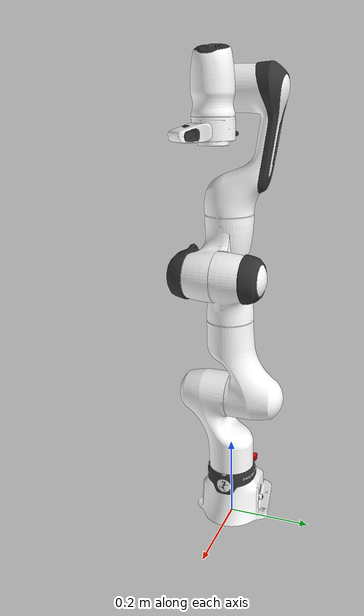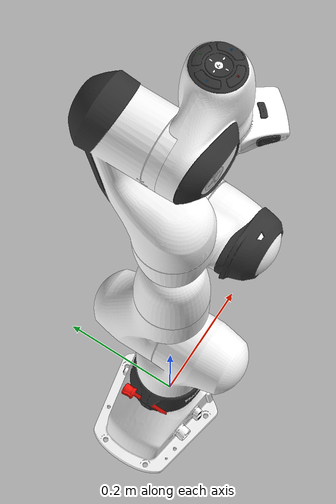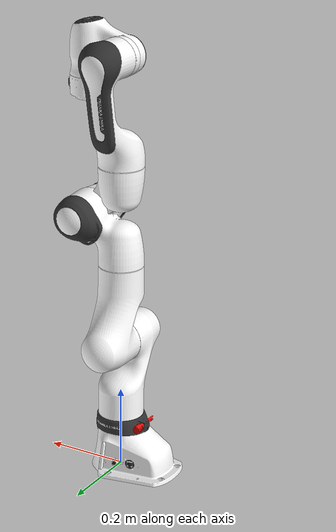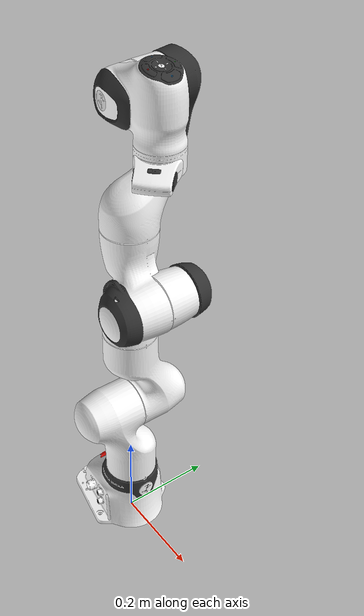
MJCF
<mujoco model="fr3">
  <compiler angle="radian"/>

  <option integrator="implicitfast"/>

  <size nkey="1"/>

  <default>
    <default class="fr3">
      <joint armature="0.195" damping="0.21" frictionloss="1.137"/>
      <site size="0.001 0.005 0.005" group="4" rgba="0.5 0.5 0.5 0.3"/>
      <general biastype="affine" biasprm="0 -1"/>
      <default class="visual">
        <geom type="mesh" contype="0" conaffinity="0" group="2"/>
      </default>
      <default class="collision">
        <geom type="mesh" group="3"/>
      </default>
    </default>
    <default class="2f85_main">
      <default class="2f85_2f85">
        <mesh scale="0.001 0.001 0.001"/>
        <general biastype="affine"/>
        <default class="2f85_driver">
          <joint solreflimit="0.005" solimplimit="0.95 0.99" range="0 0.8" armature="0.005" damping="0.1"/>
        </default>
        <default class="2f85_follower">
          <joint solreflimit="0.005" solimplimit="0.95 0.99" range="-0.872664 0.872664" armature="0.001"/>
        </default>
        <default class="2f85_spring_link">
          <joint springref="2.62" stiffness="0.05" range="-0.296706 0.8" armature="0.001" damping="0.00125"/>
        </default>
        <default class="2f85_coupler">
          <joint solreflimit="0.005" solimplimit="0.95 0.99" range="-1.57 0" armature="0.001"/>
        </default>
        <default class="2f85_visual">
          <geom type="mesh" contype="0" conaffinity="0" group="2"/>
        </default>
        <default class="2f85_collision">
          <geom type="mesh" group="3"/>
          <default class="2f85_pad_box1">
            <geom size="0.011 0.004 0.009375" type="box" priority="1" friction="0.7" solref="0.004" solimp="0.95 0.99" rgba="0.55 0.55 0.55 1"/>
          </default>
          <default class="2f85_pad_box2">
            <geom size="0.011 0.004 0.009375" type="box" priority="1" friction="0.6" solref="0.004" solimp="0.95 0.99" rgba="0.45 0.45 0.45 1"/>
          </default>
        </default>
      </default>
    </default>
  </default>

  <asset>
    <material name="black" rgba="0.2 0.2 0.2 1"/>
    <material name="white"/>
    <material name="red" rgba="1 0.072272 0.039546 1"/>
    <material name="gray" rgba="0.863156 0.863156 0.863157 1"/>
    <material name="button_green" rgba="0.102241 0.571125 0.102242 1"/>
    <material name="button_red" rgba="0.520996 0.008023 0.013702 1"/>
    <material name="button_blue" rgba="0.024157 0.445201 0.737911 1"/>
    <material name="2f85_metal" rgba="0.58 0.58 0.58 1"/>
    <material name="2f85_silicone" rgba="0.1882 0.1882 0.1882 1"/>
    <material name="2f85_gray" rgba="0.4627 0.4627 0.4627 1"/>
    <material name="2f85_black" rgba="0.149 0.149 0.149 1"/>
    <mesh name="link0_0" file="/home/yy5259/.cache/robot_descriptions/mujoco_menagerie/franka_fr3/assets/link0_0.obj"/>
    <mesh name="link0_1" file="/home/yy5259/.cache/robot_descriptions/mujoco_menagerie/franka_fr3/assets/link0_1.obj"/>
    <mesh name="link0_2" file="/home/yy5259/.cache/robot_descriptions/mujoco_menagerie/franka_fr3/assets/link0_2.obj"/>
    <mesh name="link0_3" file="/home/yy5259/.cache/robot_descriptions/mujoco_menagerie/franka_fr3/assets/link0_3.obj"/>
    <mesh name="link0_4" file="/home/yy5259/.cache/robot_descriptions/mujoco_menagerie/franka_fr3/assets/link0_4.obj"/>
    <mesh name="link0_5" file="/home/yy5259/.cache/robot_descriptions/mujoco_menagerie/franka_fr3/assets/link0_5.obj"/>
    <mesh name="link0_6" file="/home/yy5259/.cache/robot_descriptions/mujoco_menagerie/franka_fr3/assets/link0_6.obj"/>
    <mesh name="link1" file="/home/yy5259/.cache/robot_descriptions/mujoco_menagerie/franka_fr3/assets/link1.obj"/>
    <mesh name="link2" file="/home/yy5259/.cache/robot_descriptions/mujoco_menagerie/franka_fr3/assets/link2.obj"/>
    <mesh name="link3_0" file="/home/yy5259/.cache/robot_descriptions/mujoco_menagerie/franka_fr3/assets/link3_0.obj"/>
    <mesh name="link3_1" file="/home/yy5259/.cache/robot_descriptions/mujoco_menagerie/franka_fr3/assets/link3_1.obj"/>
    <mesh name="link4_0" file="/home/yy5259/.cache/robot_descriptions/mujoco_menagerie/franka_fr3/assets/link4_0.obj"/>
    <mesh name="link4_1" file="/home/yy5259/.cache/robot_descriptions/mujoco_menagerie/franka_fr3/assets/link4_1.obj"/>
    <mesh name="link5_0" file="/home/yy5259/.cache/robot_descriptions/mujoco_menagerie/franka_fr3/assets/link5_0.obj"/>
    <mesh name="link5_1" file="/home/yy5259/.cache/robot_descriptions/mujoco_menagerie/franka_fr3/assets/link5_1.obj"/>
    <mesh name="link5_2" file="/home/yy5259/.cache/robot_descriptions/mujoco_menagerie/franka_fr3/assets/link5_2.obj"/>
    <mesh name="link6_0" file="/home/yy5259/.cache/robot_descriptions/mujoco_menagerie/franka_fr3/assets/link6_0.obj"/>
    <mesh name="link6_1" file="/home/yy5259/.cache/robot_descriptions/mujoco_menagerie/franka_fr3/assets/link6_1.obj"/>
    <mesh name="link6_2" file="/home/yy5259/.cache/robot_descriptions/mujoco_menagerie/franka_fr3/assets/link6_2.obj"/>
    <mesh name="link6_3" file="/home/yy5259/.cache/robot_descriptions/mujoco_menagerie/franka_fr3/assets/link6_3.obj"/>
    <mesh name="link6_4" file="/home/yy5259/.cache/robot_descriptions/mujoco_menagerie/franka_fr3/assets/link6_4.obj"/>
    <mesh name="link6_5" file="/home/yy5259/.cache/robot_descriptions/mujoco_menagerie/franka_fr3/assets/link6_5.obj"/>
    <mesh name="link6_6" file="/home/yy5259/.cache/robot_descriptions/mujoco_menagerie/franka_fr3/assets/link6_6.obj"/>
    <mesh name="link6_7" file="/home/yy5259/.cache/robot_descriptions/mujoco_menagerie/franka_fr3/assets/link6_7.obj"/>
    <mesh name="link7_0" file="/home/yy5259/.cache/robot_descriptions/mujoco_menagerie/franka_fr3/assets/link7_0.obj"/>
    <mesh name="link7_1" file="/home/yy5259/.cache/robot_descriptions/mujoco_menagerie/franka_fr3/assets/link7_1.obj"/>
    <mesh name="link7_2" file="/home/yy5259/.cache/robot_descriptions/mujoco_menagerie/franka_fr3/assets/link7_2.obj"/>
    <mesh name="link7_3" file="/home/yy5259/.cache/robot_descriptions/mujoco_menagerie/franka_fr3/assets/link7_3.obj"/>
    <mesh name="link0_coll" file="/home/yy5259/.cache/robot_descriptions/mujoco_menagerie/franka_fr3/assets/link0.stl"/>
    <mesh name="link1_coll" file="/home/yy5259/.cache/robot_descriptions/mujoco_menagerie/franka_fr3/assets/link1.stl"/>
    <mesh name="link2_coll" file="/home/yy5259/.cache/robot_descriptions/mujoco_menagerie/franka_fr3/assets/link2.stl"/>
    <mesh name="link3_coll" file="/home/yy5259/.cache/robot_descriptions/mujoco_menagerie/franka_fr3/assets/link3.stl"/>
    <mesh name="link4_coll" file="/home/yy5259/.cache/robot_descriptions/mujoco_menagerie/franka_fr3/assets/link4.stl"/>
    <mesh name="link5_coll" file="/home/yy5259/.cache/robot_descriptions/mujoco_menagerie/franka_fr3/assets/link5.stl"/>
    <mesh name="link6_coll" file="/home/yy5259/.cache/robot_descriptions/mujoco_menagerie/franka_fr3/assets/link6.stl"/>
    <mesh name="link7_coll" file="/home/yy5259/.cache/robot_descriptions/mujoco_menagerie/franka_fr3/assets/link7.stl"/>
    <mesh name="2f85_base_mount" class="2f85_2f85" file="/home/yy5259/.cache/robot_descriptions/mujoco_menagerie/robotiq_2f85/assets/base_mount.stl"/>
    <mesh name="2f85_base" class="2f85_2f85" file="/home/yy5259/.cache/robot_descriptions/mujoco_menagerie/robotiq_2f85/assets/base.stl"/>
    <mesh name="2f85_driver" class="2f85_2f85" file="/home/yy5259/.cache/robot_descriptions/mujoco_menagerie/robotiq_2f85/assets/driver.stl"/>
    <mesh name="2f85_coupler" class="2f85_2f85" file="/home/yy5259/.cache/robot_descriptions/mujoco_menagerie/robotiq_2f85/assets/coupler.stl"/>
    <mesh name="2f85_follower" class="2f85_2f85" file="/home/yy5259/.cache/robot_descriptions/mujoco_menagerie/robotiq_2f85/assets/follower.stl"/>
    <mesh name="2f85_pad" class="2f85_2f85" file="/home/yy5259/.cache/robot_descriptions/mujoco_menagerie/robotiq_2f85/assets/pad.stl"/>
    <mesh name="2f85_silicone_pad" class="2f85_2f85" file="/home/yy5259/.cache/robot_descriptions/mujoco_menagerie/robotiq_2f85/assets/silicone_pad.stl"/>
    <mesh name="2f85_spring_link" class="2f85_2f85" file="/home/yy5259/.cache/robot_descriptions/mujoco_menagerie/robotiq_2f85/assets/spring_link.stl"/>
  </asset>

  <worldbody>
    <body name="base" childclass="fr3">
      <body name="fr3_link0">
        <geom class="visual" material="black" mesh="link0_0"/>
        <geom class="visual" material="white" mesh="link0_1"/>
        <geom class="visual" material="white" mesh="link0_2"/>
        <geom class="visual" material="white" mesh="link0_3"/>
        <geom class="visual" material="white" mesh="link0_4"/>
        <geom class="visual" material="red" mesh="link0_5"/>
        <geom class="visual" material="black" mesh="link0_6"/>
        <geom name="fr3_link0_collision" class="collision" mesh="link0_coll"/>
        <body name="fr3_link1" pos="0 0 0.333">
          <inertial pos="4.128e-07 -0.0181251 -0.0386036" quat="0.998098 -0.0605364 0.00380499 0.0110109" mass="2.92747" diaginertia="0.0239286 0.0227246 0.00610634"/>
          <joint name="fr3_joint1" pos="0 0 0" axis="0 0 1" range="-2.7437 2.7437" actuatorfrcrange="-87 87"/>
          <geom name="fr3_link1_collision" class="collision" mesh="link1_coll"/>
          <geom class="visual" material="white" mesh="link1"/>
          <body name="fr3_link2" quat="0.707107 -0.707107 0 0">
            <inertial pos="0.00318289 -0.0743222 0.00881461" quat="0.502599 0.584437 -0.465998 0.434366" mass="2.93554" diaginertia="0.0629567 0.0411924 0.0246371"/>
            <joint name="fr3_joint2" pos="0 0 0" axis="0 0 1" range="-1.7837 1.7837" actuatorfrcrange="-87 87"/>
            <geom class="visual" material="white" mesh="link2"/>
            <geom name="fr3_link2_collision" class="collision" mesh="link2_coll"/>
            <body name="fr3_link3" pos="0 -0.316 0" quat="0.707107 0.707107 0 0">
              <inertial pos="0.0407016 -0.00482006 -0.0289731" quat="0.921025 -0.244161 0.155272 0.260745" mass="2.2449" diaginertia="0.0267409 0.0189869 0.0171587"/>
              <joint name="fr3_joint3" pos="0 0 0" axis="0 0 1" range="-2.9007 2.9007" actuatorfrcrange="-87 87"/>
              <geom class="visual" material="white" mesh="link3_0"/>
              <geom class="visual" material="black" mesh="link3_1"/>
              <geom name="fr3_link3_collision" class="collision" mesh="link3_coll"/>
              <body name="fr3_link4" pos="0.0825 0 0" quat="0.707107 0.707107 0 0">
                <inertial pos="-0.0459101 0.0630493 -0.00851879" quat="0.438018 0.803311 0.00937812 0.403414" mass="2.6156" diaginertia="0.05139 0.0372717 0.0160047"/>
                <joint name="fr3_joint4" pos="0 0 0" axis="0 0 1" range="-3.0421 -0.1518" actuatorfrcrange="-87 87"/>
                <geom class="visual" material="white" mesh="link4_0"/>
                <geom class="visual" material="black" mesh="link4_1"/>
                <geom name="fr3_link4_collision" class="collision" mesh="link4_coll"/>
                <body name="fr3_link5" pos="-0.0825 0.384 0" quat="0.707107 -0.707107 0 0">
                  <inertial pos="-0.00160396 0.0292536 -0.0972966" quat="0.919031 0.125604 0.0751531 -0.366003" mass="2.32712" diaginertia="0.0579335 0.0449144 0.0130634"/>
                  <joint name="fr3_joint5" pos="0 0 0" axis="0 0 1" range="-2.8065 2.8065" actuatorfrcrange="-12 12" armature="0.074" frictionloss="0.763"/>
                  <geom class="visual" material="white" mesh="link5_0"/>
                  <geom class="visual" material="white" mesh="link5_1"/>
                  <geom class="visual" material="black" mesh="link5_2"/>
                  <geom name="fr3_link5_collision" class="collision" mesh="link5_coll"/>
                  <body name="fr3_link6" quat="0.707107 0.707107 0 0">
                    <inertial pos="0.0597131 -0.0410295 -0.0101693" quat="0.621301 0.552665 0.510011 0.220081" mass="1.81704" diaginertia="0.0175039 0.0161123 0.00193529"/>
                    <joint name="fr3_joint6" pos="0 0 0" axis="0 0 1" range="0.5445 4.5169" actuatorfrcrange="-12 12" armature="0.074" frictionloss="0.44"/>
                    <geom class="visual" material="button_green" mesh="link6_0"/>
                    <geom class="visual" material="white" mesh="link6_1"/>
                    <geom class="visual" material="white" mesh="link6_2"/>
                    <geom class="visual" material="gray" mesh="link6_3"/>
                    <geom class="visual" material="button_red" mesh="link6_4"/>
                    <geom class="visual" material="white" mesh="link6_5"/>
                    <geom class="visual" material="black" mesh="link6_6"/>
                    <geom class="visual" material="button_blue" mesh="link6_7"/>
                    <geom name="fr3_link6_collision" class="collision" mesh="link6_coll"/>
                    <body name="fr3_link7" pos="0.088 0 0" quat="0.707107 0.707107 0 0">
                      <inertial pos="0.00452258 0.00862619 -0.0161633" quat="0.727579 0.0978688 -0.24906 0.63168" mass="0.627143" diaginertia="0.000223836 0.000223642 5.64132e-07"/>
                      <joint name="fr3_joint7" pos="0 0 0" axis="0 0 1" range="-3.0159 3.0159" actuatorfrcrange="-12 12" armature="0.074" frictionloss="0.248"/>
                      <geom class="visual" material="black" mesh="link7_0"/>
                      <geom class="visual" material="white" mesh="link7_1"/>
                      <geom class="visual" material="white" mesh="link7_2"/>
                      <geom class="visual" material="black" mesh="link7_3"/>
                      <geom name="fr3_link7_collision" class="collision" mesh="link7_coll"/>
                      <site name="attachment_site" pos="0 0 0.107"/>
                      <body name="2f85_base_mount" childclass="2f85_2f85" pos="0 0 0.114">
                        <geom class="2f85_visual" material="2f85_black" mesh="2f85_base_mount"/>
                        <geom class="2f85_collision" mesh="2f85_base_mount"/>
                        <body name="2f85_base" pos="0 0 0.0038" quat="0.707107 0 0 -0.707107">
                          <inertial pos="0 -2.70394e-05 0.0354675" quat="0.999999 -0.00152849 0 0" mass="0.777441" diaginertia="0.000260285 0.000225381 0.000152708"/>
                          <geom class="2f85_visual" material="2f85_black" mesh="2f85_base"/>
                          <geom class="2f85_collision" mesh="2f85_base"/>
                          <site name="2f85_pinch" pos="0 0 0.145" group="5" rgba="0.9 0.9 0.9 1"/>
                          <body name="2f85_right_driver" pos="0 0.0306011 0.054904">
                            <inertial pos="2.96931e-12 0.0177547 0.00107314" quat="0.681301 0.732003 0 0" mass="0.00899563" diaginertia="1.72352e-06 1.60906e-06 3.22006e-07"/>
                            <joint name="2f85_right_driver_joint" class="2f85_driver" pos="0 0 0" axis="1 0 0"/>
                            <geom class="2f85_visual" material="2f85_gray" mesh="2f85_driver"/>
                            <geom class="2f85_collision" mesh="2f85_driver"/>
                            <body name="2f85_right_coupler" pos="0 0.0315 -0.0041">
                              <inertial pos="0 0.00301209 0.0232175" quat="0.705636 -0.0455904 0.0455904 0.705636" mass="0.0140974" diaginertia="4.16206e-06 3.52216e-06 8.88131e-07"/>
                              <joint name="2f85_right_coupler_joint" class="2f85_coupler" pos="0 0 0" axis="1 0 0"/>
                              <geom class="2f85_visual" material="2f85_black" mesh="2f85_coupler"/>
                              <geom class="2f85_collision" mesh="2f85_coupler"/>
                            </body>
                          </body>
                          <body name="2f85_right_spring_link" pos="0 0.0132 0.0609">
                            <inertial pos="-8.65005e-09 0.0181624 0.0212658" quat="0.663403 -0.244737 0.244737 0.663403" mass="0.0221642" diaginertia="8.96853e-06 6.71733e-06 2.63931e-06"/>
                            <joint name="2f85_right_spring_link_joint" class="2f85_spring_link" pos="0 0 0" axis="1 0 0" springref="2.62"/>
                            <geom class="2f85_visual" material="2f85_black" mesh="2f85_spring_link"/>
                            <geom class="2f85_collision" mesh="2f85_spring_link"/>
                            <body name="2f85_right_follower" pos="0 0.055 0.0375">
                              <inertial pos="0 -0.011046 0.0124786" quat="0.986437 0.164143 0 0" mass="0.0125222" diaginertia="2.67415e-06 2.4559e-06 6.02031e-07"/>
                              <joint name="2f85_right_follower_joint" class="2f85_follower" pos="0 -0.018 0.0065" axis="1 0 0"/>
                              <geom class="2f85_visual" material="2f85_black" mesh="2f85_follower"/>
                              <geom class="2f85_collision" mesh="2f85_follower"/>
                              <body name="2f85_right_pad" pos="0 -0.0189 0.01352">
                                <inertial pos="0 -0.0025 0.0185" quat="0.707107 0 0 0.707107" mass="0.0035" diaginertia="4.73958e-07 3.64583e-07 1.23958e-07"/>
                                <geom name="2f85_right_pad1" class="2f85_pad_box1" pos="0 -0.0026 0.028125" mass="0"/>
                                <geom name="2f85_right_pad2" class="2f85_pad_box2" pos="0 -0.0026 0.009375" mass="0"/>
                                <geom class="2f85_visual" mesh="2f85_pad"/>
                                <body name="2f85_right_silicone_pad">
                                  <geom class="2f85_visual" material="2f85_black" mesh="2f85_silicone_pad"/>
                                </body>
                              </body>
                            </body>
                          </body>
                          <body name="2f85_left_driver" pos="0 -0.0306011 0.054904" quat="0 0 0 1">
                            <inertial pos="0 0.0177547 0.00107314" quat="0.681301 0.732003 0 0" mass="0.00899563" diaginertia="1.72352e-06 1.60906e-06 3.22006e-07"/>
                            <joint name="2f85_left_driver_joint" class="2f85_driver" pos="0 0 0" axis="1 0 0"/>
                            <geom class="2f85_visual" material="2f85_gray" mesh="2f85_driver"/>
                            <geom class="2f85_collision" mesh="2f85_driver"/>
                            <body name="2f85_left_coupler" pos="0 0.0315 -0.0041">
                              <inertial pos="0 0.00301209 0.0232175" quat="0.705636 -0.0455904 0.0455904 0.705636" mass="0.0140974" diaginertia="4.16206e-06 3.52216e-06 8.88131e-07"/>
                              <joint name="2f85_left_coupler_joint" class="2f85_coupler" pos="0 0 0" axis="1 0 0"/>
                              <geom class="2f85_visual" material="2f85_black" mesh="2f85_coupler"/>
                              <geom class="2f85_collision" mesh="2f85_coupler"/>
                            </body>
                          </body>
                          <body name="2f85_left_spring_link" pos="0 -0.0132 0.0609" quat="0 0 0 1">
                            <inertial pos="-8.65005e-09 0.0181624 0.0212658" quat="0.663403 -0.244737 0.244737 0.663403" mass="0.0221642" diaginertia="8.96853e-06 6.71733e-06 2.63931e-06"/>
                            <joint name="2f85_left_spring_link_joint" class="2f85_spring_link" pos="0 0 0" axis="1 0 0" springref="2.62"/>
                            <geom class="2f85_visual" material="2f85_black" mesh="2f85_spring_link"/>
                            <geom class="2f85_collision" mesh="2f85_spring_link"/>
                            <body name="2f85_left_follower" pos="0 0.055 0.0375">
                              <inertial pos="0 -0.011046 0.0124786" quat="0.986437 0.164143 0 0" mass="0.0125222" diaginertia="2.67415e-06 2.4559e-06 6.02031e-07"/>
                              <joint name="2f85_left_follower_joint" class="2f85_follower" pos="0 -0.018 0.0065" axis="1 0 0"/>
                              <geom class="2f85_visual" material="2f85_black" mesh="2f85_follower"/>
                              <geom class="2f85_collision" mesh="2f85_follower"/>
                              <body name="2f85_left_pad" pos="0 -0.0189 0.01352">
                                <inertial pos="0 -0.0025 0.0185" quat="0.707107 0 0 0.707107" mass="0.0035" diaginertia="4.73958e-07 3.64583e-07 1.23958e-07"/>
                                <geom name="2f85_left_pad1" class="2f85_pad_box1" pos="0 -0.0026 0.028125" mass="0"/>
                                <geom name="2f85_left_pad2" class="2f85_pad_box2" pos="0 -0.0026 0.009375" mass="0"/>
                                <geom class="2f85_visual" mesh="2f85_pad"/>
                                <body name="2f85_left_silicone_pad">
                                  <geom class="2f85_visual" material="2f85_black" mesh="2f85_silicone_pad"/>
                                </body>
                              </body>
                            </body>
                          </body>
                        </body>
                      </body>
                    </body>
                  </body>
                </body>
              </body>
            </body>
          </body>
        </body>
      </body>
    </body>
  </worldbody>

  <contact>
    <exclude body1="fr3_link0" body2="fr3_link1"/>
    <exclude body1="2f85_base" body2="2f85_right_driver"/>
    <exclude body1="2f85_base" body2="2f85_right_spring_link"/>
    <exclude body1="2f85_base" body2="2f85_left_driver"/>
    <exclude body1="2f85_base" body2="2f85_left_spring_link"/>
    <exclude body1="2f85_right_coupler" body2="2f85_right_follower"/>
    <exclude body1="2f85_left_coupler" body2="2f85_left_follower"/>
  </contact>

  <equality>
    <connect body1="2f85_right_follower" body2="2f85_right_coupler" anchor="0 0 0" solref="0.005" solimp="0.95 0.99"/>
    <connect body1="2f85_left_follower" body2="2f85_left_coupler" anchor="0 0 0" solref="0.005" solimp="0.95 0.99"/>
    <joint joint1="2f85_right_driver_joint" joint2="2f85_left_driver_joint" polycoef="0 1 0 0 0" solref="0.005" solimp="0.95 0.99"/>
  </equality>

  <tendon>
    <fixed name="2f85_split">
      <joint joint="2f85_right_driver_joint" coef="0.5"/>
      <joint joint="2f85_left_driver_joint" coef="0.5"/>
    </fixed>
  </tendon>

  <actuator>
    <general name="fr3_joint1" class="fr3" joint="fr3_joint1" ctrlrange="-2.7437 2.7437" gainprm="4500" biasprm="0 -4500 -450"/>
    <general name="fr3_joint2" class="fr3" joint="fr3_joint2" ctrlrange="-1.7837 1.7837" gainprm="4500" biasprm="0 -4500 -450"/>
    <general name="fr3_joint3" class="fr3" joint="fr3_joint3" ctrlrange="-2.9007 2.9007" gainprm="3500" biasprm="0 -3500 -350"/>
    <general name="fr3_joint4" class="fr3" joint="fr3_joint4" ctrlrange="-3.0421 -0.1518" gainprm="3500" biasprm="0 -3500 -350"/>
    <general name="fr3_joint5" class="fr3" joint="fr3_joint5" ctrlrange="-2.8065 2.8065" gainprm="2000" biasprm="0 -2000 -200"/>
    <general name="fr3_joint6" class="fr3" joint="fr3_joint6" ctrlrange="0.5445 4.5169" gainprm="2000" biasprm="0 -2000 -200"/>
    <general name="fr3_joint7" class="fr3" joint="fr3_joint7" ctrlrange="-3.0159 3.0159" gainprm="2000" biasprm="0 -2000 -200"/>
    <general name="2f85_fingers_actuator" class="2f85_2f85" tendon="2f85_split" ctrlrange="0 255" forcerange="-5 5" gainprm="0.313725" biasprm="0 -100 -10"/>
  </actuator>

  <keyframe>
    <key name="home" qpos="0 0 0 -1.57079 0 1.57079 -0.7853 0 0 0 0 0 0 0 0" ctrl="0 0 0 -1.57079 0 1.57079 -0.7853 0"/>
  </keyframe>
</mujoco>
